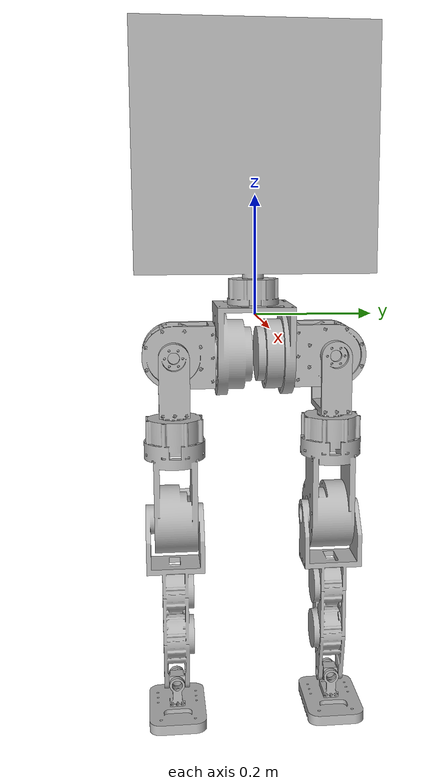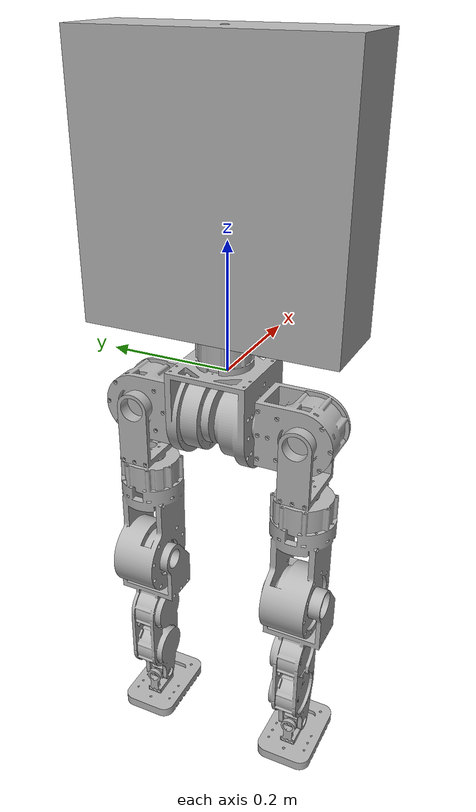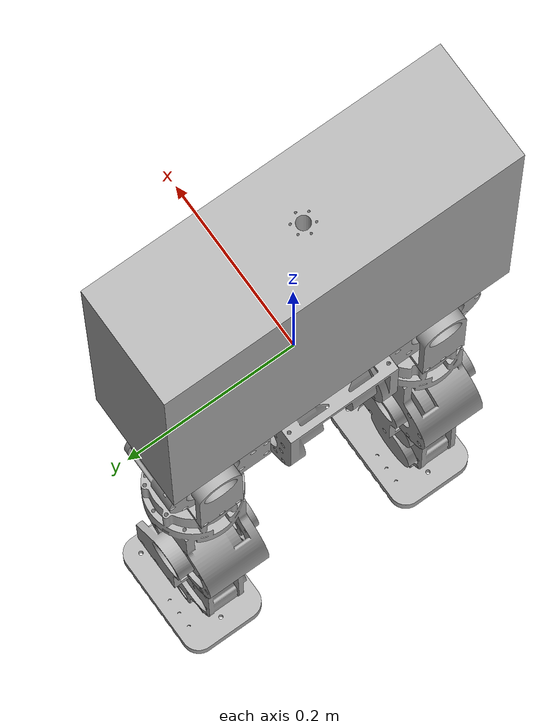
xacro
<?xml version="1.0" ?>
<robot name="robit-adult-humanoid" xmlns:xacro="http://www.ros.org/wiki/xacro">

<xacro:include filename="$(find robit-adult-humanoid_description)/urdf/materials.xacro" />
<xacro:include filename="$(find robit-adult-humanoid_description)/urdf/robit-adult-humanoid.trans" />
<xacro:include filename="$(find robit-adult-humanoid_description)/urdf/robit-adult-humanoid.gazebo" />
<link name="base_link">
  <inertial>
    <origin xyz="-0.01281095989310514 -0.0022810841892335573 -0.04582677292819565" rpy="0 0 0"/>
    <mass value="4.686"/>
    <inertia ixx="0.05322" iyy="0.046518" izz="0.033952" ixy="0.0" iyz="-3.4e-05" ixz="0.0"/>
  </inertial>
  <visual>
    <origin xyz="0 0 0" rpy="0 0 0"/>
    <geometry>
      <mesh filename="file://$(find robit-adult-humanoid_description)/meshes/base_link.stl" scale="0.001 0.001 0.001"/>
    </geometry>
    <material name="silver"/>
  </visual>
  <collision>
    <origin xyz="0 0 0" rpy="0 0 0"/>
    <geometry>
      <mesh filename="file://$(find robit-adult-humanoid_description)/meshes/base_link.stl" scale="0.001 0.001 0.001"/>
    </geometry>
  </collision>
</link>

<link name="torso_dummy_1">
  <inertial>
    <origin xyz="4.010597370179836e-08 2.07269816436019e-08 0.20991445985992171" rpy="0 0 0"/>
    <mass value="13.0"/>
    <inertia ixx="4.348138" iyy="2.401024" izz="2.407002" ixy="-0.0" iyz="-0.0" ixz="-0.0"/>
  </inertial>
  <visual>
    <origin xyz="0.012811 0.00231 -0.061621" rpy="0 0 0"/>
    <geometry>
      <mesh filename="file://$(find robit-adult-humanoid_description)/meshes/torso_dummy_1.stl" scale="0.001 0.001 0.001"/>
    </geometry>
    <material name="silver"/>
  </visual>
  <collision>
    <origin xyz="0.012811 0.00231 -0.061621" rpy="0 0 0"/>
    <geometry>
      <mesh filename="file://$(find robit-adult-humanoid_description)/meshes/torso_dummy_1.stl" scale="0.001 0.001 0.001"/>
    </geometry>
  </collision>
</link>

<link name="left_hip_1">
  <inertial>
    <origin xyz="0.0006297032466040884 0.06724050201455194 -0.00012501074286021263" rpy="0 0 0"/>
    <mass value="1.622"/>
    <inertia ixx="0.009165" iyy="0.00579" izz="0.007928" ixy="-3.4e-05" iyz="-1.3e-05" ixz="7e-06"/>
  </inertial>
  <visual>
    <origin xyz="0.012811 -0.05519 0.068879" rpy="0 0 0"/>
    <geometry>
      <mesh filename="file://$(find robit-adult-humanoid_description)/meshes/left_hip_1.stl" scale="0.001 0.001 0.001"/>
    </geometry>
    <material name="silver"/>
  </visual>
  <collision>
    <origin xyz="0.012811 -0.05519 0.068879" rpy="0 0 0"/>
    <geometry>
      <mesh filename="file://$(find robit-adult-humanoid_description)/meshes/left_hip_1.stl" scale="0.001 0.001 0.001"/>
    </geometry>
  </collision>
</link>

<link name="left_hip_thigh_1">
  <inertial>
    <origin xyz="-0.03294977172684366 2.0727097427286623e-08 -0.05754189872842047" rpy="0 0 0"/>
    <mass value="0.431"/>
    <inertia ixx="0.00238" iyy="0.004152" izz="0.002362" ixy="-0.0" iyz="0.0" ixz="-9.4e-05"/>
  </inertial>
  <visual>
    <origin xyz="-0.022439 -0.13519 0.068879" rpy="0 0 0"/>
    <geometry>
      <mesh filename="file://$(find robit-adult-humanoid_description)/meshes/left_hip_thigh_1.stl" scale="0.001 0.001 0.001"/>
    </geometry>
    <material name="silver"/>
  </visual>
  <collision>
    <origin xyz="-0.022439 -0.13519 0.068879" rpy="0 0 0"/>
    <geometry>
      <mesh filename="file://$(find robit-adult-humanoid_description)/meshes/left_hip_thigh_1.stl" scale="0.001 0.001 0.001"/>
    </geometry>
  </collision>
</link>

<link name="left_shin_1">
  <inertial>
    <origin xyz="0.010618528090019137 -0.0333920984187136 -0.14926516145705215" rpy="0 0 0"/>
    <mass value="2.017"/>
    <inertia ixx="0.03492" iyy="0.034511" izz="0.005734" ixy="-6.6e-05" iyz="-0.00021" ixz="-0.000323"/>
  </inertial>
  <visual>
    <origin xyz="0.031811 -0.16719 0.366379" rpy="0 0 0"/>
    <geometry>
      <mesh filename="file://$(find robit-adult-humanoid_description)/meshes/left_shin_1.stl" scale="0.001 0.001 0.001"/>
    </geometry>
    <material name="silver"/>
  </visual>
  <collision>
    <origin xyz="0.031811 -0.16719 0.366379" rpy="0 0 0"/>
    <geometry>
      <mesh filename="file://$(find robit-adult-humanoid_description)/meshes/left_shin_1.stl" scale="0.001 0.001 0.001"/>
    </geometry>
  </collision>
</link>

<link name="right_hip_1">
  <inertial>
    <origin xyz="0.0006297032483585027 -0.0672404879580738 -0.0001250108063819838" rpy="0 0 0"/>
    <mass value="1.622"/>
    <inertia ixx="0.009165" iyy="0.00579" izz="0.007928" ixy="3.4e-05" iyz="1.3e-05" ixz="7e-06"/>
  </inertial>
  <visual>
    <origin xyz="0.012811 0.05981 0.068879" rpy="0 0 0"/>
    <geometry>
      <mesh filename="file://$(find robit-adult-humanoid_description)/meshes/right_hip_1.stl" scale="0.001 0.001 0.001"/>
    </geometry>
    <material name="silver"/>
  </visual>
  <collision>
    <origin xyz="0.012811 0.05981 0.068879" rpy="0 0 0"/>
    <geometry>
      <mesh filename="file://$(find robit-adult-humanoid_description)/meshes/right_hip_1.stl" scale="0.001 0.001 0.001"/>
    </geometry>
  </collision>
</link>

<link name="right_hip_thigh_1">
  <inertial>
    <origin xyz="-0.032949771725187454 2.0726992372432917e-08 -0.0575418987136713" rpy="0 0 0"/>
    <mass value="0.431"/>
    <inertia ixx="0.00238" iyy="0.004152" izz="0.002362" ixy="0.0" iyz="-0.0" ixz="-9.4e-05"/>
  </inertial>
  <visual>
    <origin xyz="-0.022439 0.13981 0.068879" rpy="0 0 0"/>
    <geometry>
      <mesh filename="file://$(find robit-adult-humanoid_description)/meshes/right_hip_thigh_1.stl" scale="0.001 0.001 0.001"/>
    </geometry>
    <material name="silver"/>
  </visual>
  <collision>
    <origin xyz="-0.022439 0.13981 0.068879" rpy="0 0 0"/>
    <geometry>
      <mesh filename="file://$(find robit-adult-humanoid_description)/meshes/right_hip_thigh_1.stl" scale="0.001 0.001 0.001"/>
    </geometry>
  </collision>
</link>

<link name="left_thigh_1">
  <inertial>
    <origin xyz="-0.01047227388465445 0.0010136953040755792 -0.12292464330555514" rpy="0 0 0"/>
    <mass value="3.408"/>
    <inertia ixx="0.066064" iyy="0.069816" izz="0.014807" ixy="9e-05" iyz="0.000661" ixz="-0.006958"/>
  </inertial>
  <visual>
    <origin xyz="0.011811 -0.13519 0.178879" rpy="0 0 0"/>
    <geometry>
      <mesh filename="file://$(find robit-adult-humanoid_description)/meshes/left_thigh_1.stl" scale="0.001 0.001 0.001"/>
    </geometry>
    <material name="silver"/>
  </visual>
  <collision>
    <origin xyz="0.011811 -0.13519 0.178879" rpy="0 0 0"/>
    <geometry>
      <mesh filename="file://$(find robit-adult-humanoid_description)/meshes/left_thigh_1.stl" scale="0.001 0.001 0.001"/>
    </geometry>
  </collision>
</link>

<link name="right_thigh_1">
  <inertial>
    <origin xyz="-0.010472273856055954 -0.0010136538122056948 -0.12292464329228153" rpy="0 0 0"/>
    <mass value="3.408"/>
    <inertia ixx="0.066064" iyy="0.069816" izz="0.014807" ixy="-9e-05" iyz="-0.000661" ixz="-0.006958"/>
  </inertial>
  <visual>
    <origin xyz="0.011811 0.13981 0.178879" rpy="0 0 0"/>
    <geometry>
      <mesh filename="file://$(find robit-adult-humanoid_description)/meshes/right_thigh_1.stl" scale="0.001 0.001 0.001"/>
    </geometry>
    <material name="silver"/>
  </visual>
  <collision>
    <origin xyz="0.011811 0.13981 0.178879" rpy="0 0 0"/>
    <geometry>
      <mesh filename="file://$(find robit-adult-humanoid_description)/meshes/right_thigh_1.stl" scale="0.001 0.001 0.001"/>
    </geometry>
  </collision>
</link>

<link name="right_shin_1">
  <inertial>
    <origin xyz="0.010618528091643188 0.033392135688315616 -0.1492651614422552" rpy="0 0 0"/>
    <mass value="2.017"/>
    <inertia ixx="0.03492" iyy="0.034511" izz="0.005734" ixy="6.6e-05" iyz="0.00021" ixz="-0.000323"/>
  </inertial>
  <visual>
    <origin xyz="0.031811 0.17181 0.366379" rpy="0 0 0"/>
    <geometry>
      <mesh filename="file://$(find robit-adult-humanoid_description)/meshes/right_shin_1.stl" scale="0.001 0.001 0.001"/>
    </geometry>
    <material name="silver"/>
  </visual>
  <collision>
    <origin xyz="0.031811 0.17181 0.366379" rpy="0 0 0"/>
    <geometry>
      <mesh filename="file://$(find robit-adult-humanoid_description)/meshes/right_shin_1.stl" scale="0.001 0.001 0.001"/>
    </geometry>
  </collision>
</link>

<link name="left_ankle_1">
  <inertial>
    <origin xyz="3.640125762864599e-07 -0.019499640616245678 -3.179999508162723e-07" rpy="0 0 0"/>
    <mass value="0.036"/>
    <inertia ixx="1.1e-05" iyy="6e-06" izz="1e-05" ixy="-0.0" iyz="-0.0" ixz="-0.0"/>
  </inertial>
  <visual>
    <origin xyz="0.014295 -0.157813 0.666534" rpy="0 0 0"/>
    <geometry>
      <mesh filename="file://$(find robit-adult-humanoid_description)/meshes/left_ankle_1.stl" scale="0.001 0.001 0.001"/>
    </geometry>
    <material name="silver"/>
  </visual>
  <collision>
    <origin xyz="0.014295 -0.157813 0.666534" rpy="0 0 0"/>
    <geometry>
      <mesh filename="file://$(find robit-adult-humanoid_description)/meshes/left_ankle_1.stl" scale="0.001 0.001 0.001"/>
    </geometry>
  </collision>
</link>

<link name="right_ankle_1">
  <inertial>
    <origin xyz="3.640142449499312e-07 0.019499682070422297 -3.179851766343944e-07" rpy="0 0 0"/>
    <mass value="0.036"/>
    <inertia ixx="1.1e-05" iyy="6e-06" izz="1e-05" ixy="0.0" iyz="0.0" ixz="0.0"/>
  </inertial>
  <visual>
    <origin xyz="0.014295 0.162433 0.666534" rpy="0 0 0"/>
    <geometry>
      <mesh filename="file://$(find robit-adult-humanoid_description)/meshes/right_ankle_1.stl" scale="0.001 0.001 0.001"/>
    </geometry>
    <material name="silver"/>
  </visual>
  <collision>
    <origin xyz="0.014295 0.162433 0.666534" rpy="0 0 0"/>
    <geometry>
      <mesh filename="file://$(find robit-adult-humanoid_description)/meshes/right_ankle_1.stl" scale="0.001 0.001 0.001"/>
    </geometry>
  </collision>
</link>

<link name="right_foot_1">
  <inertial>
    <origin xyz="0.0002537656221860748 -3.1792990121126685e-07 -0.046881970453633515" rpy="0 0 0"/>
    <mass value="0.494"/>
    <inertia ixx="0.001684" iyy="0.003666" izz="0.005031" ixy="0.0" iyz="0.0" ixz="5.8e-05"/>
  </inertial>
  <visual>
    <origin xyz="0.002295 0.142933 0.666534" rpy="0 0 0"/>
    <geometry>
      <mesh filename="file://$(find robit-adult-humanoid_description)/meshes/right_foot_1.stl" scale="0.001 0.001 0.001"/>
    </geometry>
    <material name="silver"/>
  </visual>
  <collision>
    <origin xyz="0.002295 0.142933 0.666534" rpy="0 0 0"/>
    <geometry>
      <mesh filename="file://$(find robit-adult-humanoid_description)/meshes/right_foot_1.stl" scale="0.001 0.001 0.001"/>
    </geometry>
  </collision>
</link>

<link name="left_foot_1">
  <inertial>
    <origin xyz="0.005253765620523281 3.5938407663693717e-07 -0.046881970468406475" rpy="0 0 0"/>
    <mass value="0.494"/>
    <inertia ixx="0.001684" iyy="0.003666" izz="0.005031" ixy="-0.0" iyz="-0.0" ixz="5.8e-05"/>
  </inertial>
  <visual>
    <origin xyz="0.007295 -0.138313 0.666534" rpy="0 0 0"/>
    <geometry>
      <mesh filename="file://$(find robit-adult-humanoid_description)/meshes/left_foot_1.stl" scale="0.001 0.001 0.001"/>
    </geometry>
    <material name="silver"/>
  </visual>
  <collision>
    <origin xyz="0.007295 -0.138313 0.666534" rpy="0 0 0"/>
    <geometry>
      <mesh filename="file://$(find robit-adult-humanoid_description)/meshes/left_foot_1.stl" scale="0.001 0.001 0.001"/>
    </geometry>
  </collision>
</link>

<!-- ROBSTRIDE06 -->
<joint name="torso_yaw" type="revolute">
  <origin xyz="-0.012811 -0.00231 0.061621" rpy="0 0 0"/>
  <parent link="base_link"/>
  <child link="torso_dummy_1"/>
  <axis xyz="0.0 -0.0 1.0"/>
  <limit
      lower="0.0"
      upper="0.0"
      effort="36"
      velocity="67.0" />
</joint>

<!-- ROBSTRIDE04 -->
<joint name="left_hip_pitch" type="revolute">
  <origin xyz="-0.012811 0.05519 -0.068879" rpy="0 0 0"/>
  <parent link="base_link"/>
  <child link="left_hip_1"/>
  <axis xyz="0.0 1.0 0.0"/>
  <limit
      lower="-2.225"
      upper="2.225"
      effort="120.0"
      velocity="15.0" />
</joint>

<!-- ROBSTRIDE03 -->
<joint name="left_hip_roll" type="revolute">
  <origin xyz="0.03525 0.08 0.0" rpy="0 0 0"/>
  <parent link="left_hip_1"/>
  <child link="left_hip_thigh_1"/>
  <axis xyz="1.0 0.0 0.0"/>
  <limit
      lower="-0.493"
      upper="2.3"
      effort="60"
      velocity="50" />
</joint>

<!-- ROBSTRIDE04 -->
<joint name="left_knee_pitch" type="revolute">
  <origin xyz="-0.02 0.032 -0.1875" rpy="0 0 0"/>
  <parent link="left_thigh_1"/>
  <child link="left_shin_1"/>
  <axis xyz="0.0 1.0 0.0"/>
  <limit
      lower="-0.2"
      upper="2.53"
      effort="120.0"
      velocity="15.0" />
</joint>

<!-- ROBSTRIDE04 -->
<joint name="right_hip_pitch" type="revolute">
  <origin xyz="-0.012811 -0.05981 -0.068879" rpy="0 0 0"/>
  <parent link="base_link"/>
  <child link="right_hip_1"/>
  <axis xyz="0.0 -1.0 -0.0"/>
  <limit
      lower="-2.225"
      upper="2.225"
      effort="120.0"
      velocity="15.0" />
</joint>

<!-- ROBSTRIDE03 -->
<joint name="right_hip_roll" type="revolute">
  <origin xyz="0.03525 -0.08 0.0" rpy="0 0 0"/>
  <parent link="right_hip_1"/>
  <child link="right_hip_thigh_1"/>
  <axis xyz="1.0 -0.0 -0.0"/>
  <limit
      lower="-2.3"
      upper="0.493"
      effort="60"
      velocity="50" />
</joint>

<!-- ROBSTRIDE03 -->
<joint name="left_hip_yaw" type="revolute">
  <origin xyz="-0.03425 0.0 -0.11" rpy="0 0 0"/>
  <parent link="left_hip_thigh_1"/>
  <child link="left_thigh_1"/>
  <axis xyz="0.0 0.0 -1.0"/>
  <limit
      lower="-3.142"
      upper="3.142"
      effort="60"
      velocity="50" />
</joint>

<!-- ROBSTRIDE03 -->
<joint name="right_hip_yaw" type="revolute">
  <origin xyz="-0.03425 0.0 -0.11" rpy="0 0 0"/>
  <parent link="right_hip_thigh_1"/>
  <child link="right_thigh_1"/>
  <axis xyz="-0.0 -0.0 -1.0"/>
  <limit
      lower="-3.142"
      upper="3.142"
      effort="60"
      velocity="50" />
</joint>

<!-- ROBSTRIDE04 -->
<joint name="right_knee_pitch" type="revolute">
  <origin xyz="-0.02 -0.032 -0.1875" rpy="0 0 0"/>
  <parent link="right_thigh_1"/>
  <child link="right_shin_1"/>
  <axis xyz="-0.0 -1.0 0.0"/>
  <limit
      lower="-2.53"
      upper="0.2"
      effort="120.0"
      velocity="15.0" />
</joint>

<!-- ROBSTRIDE06 PARREL LINK PIVOT -->
<joint name="left_ankle_pitch" type="revolute">
  <origin xyz="0.017516 -0.009377 -0.300155" rpy="0 0 0"/>
  <parent link="left_shin_1"/>
  <child link="left_ankle_1"/>
  <axis xyz="-0.0 1.0 0.0"/>
  <limit
      lower="-1.5"
      upper="1.5"
      effort="36"
      velocity="67.0" />
</joint>

<!-- ROBSTRIDE06 PARREL LINK PIVOT -->
<joint name="right_ankle_pitch" type="revolute">
  <origin xyz="0.017516 0.009377 -0.300155" rpy="0 0 0"/>
  <parent link="right_shin_1"/>
  <child link="right_ankle_1"/>
  <axis xyz="0.0 -1.0 0.0"/>
  <limit
      lower="-1.5"
      upper="1.5"
      effort="36"
      velocity="67.0" />
</joint>

<!-- ROBSTRIDE06 PARREL LINK PIVOT -->
<joint name="right_ankle_roll" type="revolute">
  <origin xyz="0.012 0.0195 0.0" rpy="0 0 0"/>
  <parent link="right_ankle_1"/>
  <child link="right_foot_1"/>
  <axis xyz="1.0 -0.0 0.0"/>
  <limit
      lower="-1.57"
      upper="1.57"
      effort="36"
      velocity="67.0" />
</joint>

<!-- ROBSTRIDE06 PARREL LINK PIVOT -->
<joint name="left_ankle_roll" type="revolute">
  <origin xyz="0.007 -0.0195 0.0" rpy="0 0 0"/>
  <parent link="left_ankle_1"/>
  <child link="left_foot_1"/>
  <axis xyz="1.0 -0.0 0.0"/>
  <limit
      lower="-1.57"
      upper="1.57"
      effort="36"
      velocity="67.0" />
</joint>

</robot>

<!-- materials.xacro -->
<robot name="robit-adult-humanoid" xmlns:xacro="http://www.ros.org/wiki/xacro" >

<material name="silver">
  <color rgba="0.700 0.700 0.700 1.000"/>
</material>

</robot>

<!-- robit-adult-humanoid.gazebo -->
<robot name="robit-adult-humanoid" xmlns:xacro="http://www.ros.org/wiki/xacro" >

<xacro:property name="body_color" value="Gazebo/Silver" />

<gazebo>
  <plugin name="control" filename="libgazebo_ros_control.so"/>
</gazebo>
<gazebo reference="base_link">
  <material>${body_color}</material>
  <mu1>0.2</mu1>
  <mu2>0.2</mu2>
  <self_collide>true</self_collide>
  <gravity>true</gravity>
</gazebo>

<gazebo reference="torso_dummy_1">
  <material>${body_color}</material>
  <mu1>0.2</mu1>
  <mu2>0.2</mu2>
  <self_collide>true</self_collide>
</gazebo>

<gazebo reference="left_hip_1">
  <material>${body_color}</material>
  <mu1>0.2</mu1>
  <mu2>0.2</mu2>
  <self_collide>true</self_collide>
</gazebo>

<gazebo reference="left_hip_thigh_1">
  <material>${body_color}</material>
  <mu1>0.2</mu1>
  <mu2>0.2</mu2>
  <self_collide>true</self_collide>
</gazebo>

<gazebo reference="left_shin_1">
  <material>${body_color}</material>
  <mu1>0.2</mu1>
  <mu2>0.2</mu2>
  <self_collide>true</self_collide>
</gazebo>

<gazebo reference="right_hip_1">
  <material>${body_color}</material>
  <mu1>0.2</mu1>
  <mu2>0.2</mu2>
  <self_collide>true</self_collide>
</gazebo>

<gazebo reference="right_hip_thigh_1">
  <material>${body_color}</material>
  <mu1>0.2</mu1>
  <mu2>0.2</mu2>
  <self_collide>true</self_collide>
</gazebo>

<gazebo reference="left_thigh_1">
  <material>${body_color}</material>
  <mu1>0.2</mu1>
  <mu2>0.2</mu2>
  <self_collide>true</self_collide>
</gazebo>

<gazebo reference="right_thigh_1">
  <material>${body_color}</material>
  <mu1>0.2</mu1>
  <mu2>0.2</mu2>
  <self_collide>true</self_collide>
</gazebo>

<gazebo reference="right_shin_1">
  <material>${body_color}</material>
  <mu1>0.2</mu1>
  <mu2>0.2</mu2>
  <self_collide>true</self_collide>
</gazebo>

<gazebo reference="left_ankle_1">
  <material>${body_color}</material>
  <mu1>0.2</mu1>
  <mu2>0.2</mu2>
  <self_collide>true</self_collide>
</gazebo>

<gazebo reference="right_ankle_1">
  <material>${body_color}</material>
  <mu1>0.2</mu1>
  <mu2>0.2</mu2>
  <self_collide>true</self_collide>
</gazebo>

<gazebo reference="right_foot_1">
  <material>${body_color}</material>
  <mu1>0.2</mu1>
  <mu2>0.2</mu2>
  <self_collide>true</self_collide>
</gazebo>

<gazebo reference="left_foot_1">
  <material>${body_color}</material>
  <mu1>0.2</mu1>
  <mu2>0.2</mu2>
  <self_collide>true</self_collide>
</gazebo>

</robot>
